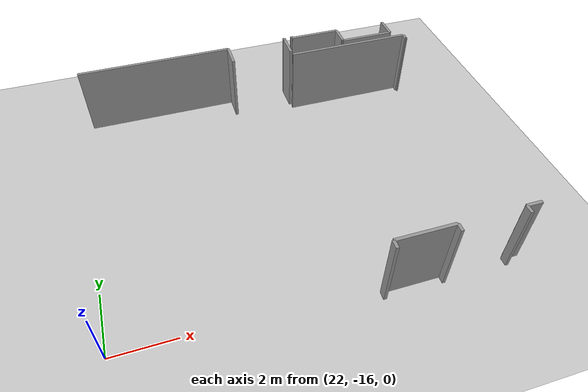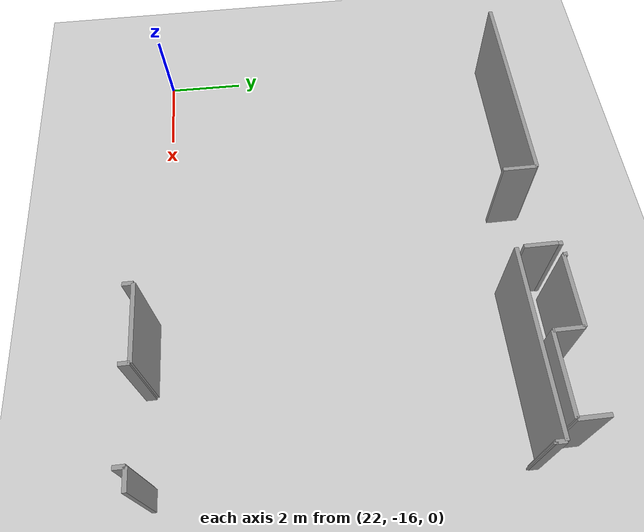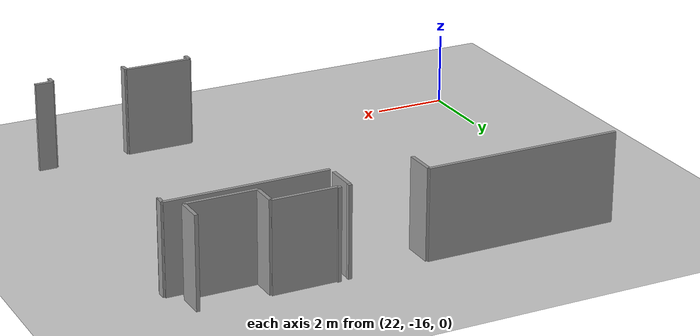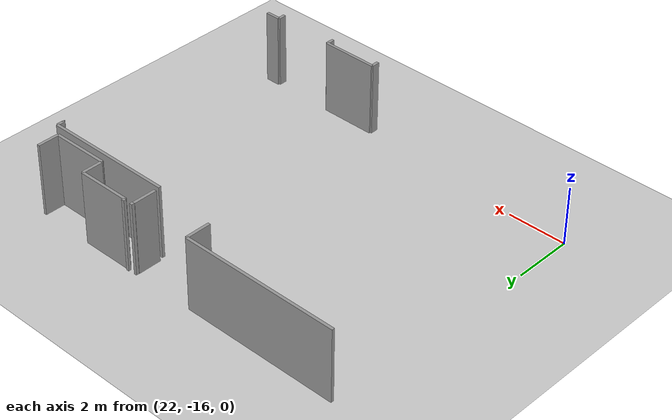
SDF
<sdf version="1.6">
 <world name="default">
  <model name="ground_plane">
   <static>1</static>
   <link name="link">
    <collision name="collision">
     <geometry><plane><normal>0 0 1</normal><size>100 100</size></plane></geometry>
     <surface><friction><ode><mu>100</mu><mu2>50</mu2></ode></friction></surface>
    </collision>
    <visual name="visual">
     <cast_shadows>0</cast_shadows>
     <geometry><plane><normal>0 0 1</normal><size>100 100</size></plane></geometry>
     <material>
      <script><uri>file://media/materials/scripts/gazebo.material</uri><name>Gazebo/Grey</name></script>
     </material>
    </visual>
   </link>
  </model>
  <model name="0510032261_A_40_1_103">
   <static>1</static>
   <link name="Wall_496">
    <collision name="Wall_496_Collision">
     <geometry><box><size>4.41207115629 0.1 2.5</size></box></geometry>
     <pose>2.20603557814 0 1.25 0 0 0</pose>
    </collision>
    <visual name="Wall_496_Visual">
     <pose>2.20603557814 0 1.25 0 0 0</pose>
     <geometry><box><size>4.41207115629 0.1 2.5</size></box></geometry>
     <material>
      <script><uri>file://media/materials/scripts/gazebo.material</uri><name>Gazebo/Grey</name></script>
      <ambient>1 1 1 1</ambient>
     </material>
    </visual>
    <pose>79.0420584498 -24.0836086404 0 0 0 0.0</pose>
   </link>
   <link name="Wall_497">
    <collision name="Wall_497_Collision">
     <geometry><box><size>0.23875476493 0.1 2.5</size></box></geometry>
     <pose>0.119377382465 0 1.25 0 0 0</pose>
    </collision>
    <visual name="Wall_497_Visual">
     <pose>0.119377382465 0 1.25 0 0 0</pose>
     <geometry><box><size>0.23875476493 0.1 2.5</size></box></geometry>
     <material>
      <script><uri>file://media/materials/scripts/gazebo.material</uri><name>Gazebo/Grey</name></script>
      <ambient>1 1 1 1</ambient>
     </material>
    </visual>
    <pose>83.4541296061 -24.0836086404 0 0 0 -1.57079632679</pose>
   </link>
   <link name="Wall_498">
    <collision name="Wall_498_Collision">
     <geometry><box><size>0.0387547649301 0.1 2.5</size></box></geometry>
     <pose>0.0193773824651 0 1.25 0 0 0</pose>
    </collision>
    <visual name="Wall_498_Visual">
     <pose>0.0193773824651 0 1.25 0 0 0</pose>
     <geometry><box><size>0.0387547649301 0.1 2.5</size></box></geometry>
     <material>
      <script><uri>file://media/materials/scripts/gazebo.material</uri><name>Gazebo/Grey</name></script>
      <ambient>1 1 1 1</ambient>
     </material>
    </visual>
    <pose>83.4541296061 -24.3223634053 0 0 0 0.0</pose>
   </link>
   <link name="Wall_503">
    <collision name="Wall_503_Collision">
     <geometry><box><size>0.497458703939 0.1 2.5</size></box></geometry>
     <pose>0.24872935197 0 1.25 0 0 0</pose>
    </collision>
    <visual name="Wall_503_Visual">
     <pose>0.24872935197 0 1.25 0 0 0</pose>
     <geometry><box><size>0.497458703939 0.1 2.5</size></box></geometry>
     <material>
      <script><uri>file://media/materials/scripts/gazebo.material</uri><name>Gazebo/Grey</name></script>
      <ambient>1 1 1 1</ambient>
     </material>
    </visual>
    <pose>83.474841169 -32.8091486658 0 0 0 3.14159265359</pose>
   </link>
   <link name="Wall_504">
    <collision name="Wall_504_Collision">
     <geometry><box><size>0.262770012706 0.1 2.5</size></box></geometry>
     <pose>0.131385006353 0 1.25 0 0 0</pose>
    </collision>
    <visual name="Wall_504_Visual">
     <pose>0.131385006353 0 1.25 0 0 0</pose>
     <geometry><box><size>0.262770012706 0.1 2.5</size></box></geometry>
     <material>
      <script><uri>file://media/materials/scripts/gazebo.material</uri><name>Gazebo/Grey</name></script>
      <ambient>1 1 1 1</ambient>
     </material>
    </visual>
    <pose>82.9773824651 -32.8091486658 0 0 0 -1.57079632679</pose>
   </link>
   <link name="Wall_505">
    <collision name="Wall_505_Collision">
     <geometry><box><size>0.258703939009 0.1 2.5</size></box></geometry>
     <pose>0.129351969504 0 1.25 0 0 0</pose>
    </collision>
    <visual name="Wall_505_Visual">
     <pose>0.129351969504 0 1.25 0 0 0</pose>
     <geometry><box><size>0.258703939009 0.1 2.5</size></box></geometry>
     <material>
      <script><uri>file://media/materials/scripts/gazebo.material</uri><name>Gazebo/Grey</name></script>
      <ambient>1 1 1 1</ambient>
     </material>
    </visual>
    <pose>80.8536213469 -33.0719186785 0 0 0 1.57079632679</pose>
   </link>
   <link name="Wall_506">
    <collision name="Wall_506_Collision">
     <geometry><box><size>1.8750952986 0.1 2.5</size></box></geometry>
     <pose>0.937547649301 0 1.25 0 0 0</pose>
    </collision>
    <visual name="Wall_506_Visual">
     <pose>0.937547649301 0 1.25 0 0 0</pose>
     <geometry><box><size>1.8750952986 0.1 2.5</size></box></geometry>
     <material>
      <script><uri>file://media/materials/scripts/gazebo.material</uri><name>Gazebo/Grey</name></script>
      <ambient>1 1 1 1</ambient>
     </material>
    </visual>
    <pose>80.8536213469 -32.8132147395 0 0 0 3.14159265359</pose>
   </link>
   <link name="Wall_507">
    <collision name="Wall_507_Collision">
     <geometry><box><size>0.260736975858 0.1 2.5</size></box></geometry>
     <pose>0.130368487929 0 1.25 0 0 0</pose>
    </collision>
    <visual name="Wall_507_Visual">
     <pose>0.130368487929 0 1.25 0 0 0</pose>
     <geometry><box><size>0.260736975858 0.1 2.5</size></box></geometry>
     <material>
      <script><uri>file://media/materials/scripts/gazebo.material</uri><name>Gazebo/Grey</name></script>
      <ambient>1 1 1 1</ambient>
     </material>
    </visual>
    <pose>78.9785260483 -32.8132147395 0 0 0 -1.57079632679</pose>
   </link>
   <link name="Wall_517">
    <collision name="Wall_517_Collision">
     <geometry><box><size>0.680559085133 0.1 2.5</size></box></geometry>
     <pose>0.340279542567 0 1.25 0 0 0</pose>
    </collision>
    <visual name="Wall_517_Visual">
     <pose>0.340279542567 0 1.25 0 0 0</pose>
     <geometry><box><size>0.680559085133 0.1 2.5</size></box></geometry>
     <material>
      <script><uri>file://media/materials/scripts/gazebo.material</uri><name>Gazebo/Grey</name></script>
      <ambient>1 1 1 1</ambient>
     </material>
    </visual>
    <pose>81.1246505718 -23.7340533672 0 0 0 1.57079632679</pose>
   </link>
   <link name="Wall_518">
    <collision name="Wall_518_Collision">
     <geometry><box><size>1.78983481576 0.1 2.5</size></box></geometry>
     <pose>0.894917407878 0 1.25 0 0 0</pose>
    </collision>
    <visual name="Wall_518_Visual">
     <pose>0.894917407878 0 1.25 0 0 0</pose>
     <geometry><box><size>1.78983481576 0.1 2.5</size></box></geometry>
     <material>
      <script><uri>file://media/materials/scripts/gazebo.material</uri><name>Gazebo/Grey</name></script>
      <ambient>1 1 1 1</ambient>
     </material>
    </visual>
    <pose>81.1246505718 -23.0534942821 0 0 0 3.14159265359</pose>
   </link>
   <link name="Wall_519">
    <collision name="Wall_519_Collision">
     <geometry><box><size>0.092376111817 0.1 2.5</size></box></geometry>
     <pose>0.0461880559085 0 1.25 0 0 0</pose>
    </collision>
    <visual name="Wall_519_Visual">
     <pose>0.0461880559085 0 1.25 0 0 0</pose>
     <geometry><box><size>0.092376111817 0.1 2.5</size></box></geometry>
     <material>
      <script><uri>file://media/materials/scripts/gazebo.material</uri><name>Gazebo/Grey</name></script>
      <ambient>1 1 1 1</ambient>
     </material>
    </visual>
    <pose>79.334815756 -23.0534942821 0 0 0 1.57079632679</pose>
   </link>
   <link name="Wall_552">
    <collision name="Wall_552_Collision">
     <geometry><box><size>0.743837357052 0.1 2.5</size></box></geometry>
     <pose>0.371918678526 0 1.25 0 0 0</pose>
    </collision>
    <visual name="Wall_552_Visual">
     <pose>0.371918678526 0 1.25 0 0 0</pose>
     <geometry><box><size>0.743837357052 0.1 2.5</size></box></geometry>
     <material>
      <script><uri>file://media/materials/scripts/gazebo.material</uri><name>Gazebo/Grey</name></script>
      <ambient>1 1 1 1</ambient>
     </material>
    </visual>
    <pose>83.049047014 -23.026429479 0 0 0 -1.57079632679</pose>
   </link>
   <link name="Wall_553">
    <collision name="Wall_553_Collision">
     <geometry><box><size>1.92642947903 0.1 2.5</size></box></geometry>
     <pose>0.963214739517 0 1.25 0 0 0</pose>
    </collision>
    <visual name="Wall_553_Visual">
     <pose>0.963214739517 0 1.25 0 0 0</pose>
     <geometry><box><size>1.92642947903 0.1 2.5</size></box></geometry>
     <material>
      <script><uri>file://media/materials/scripts/gazebo.material</uri><name>Gazebo/Grey</name></script>
      <ambient>1 1 1 1</ambient>
     </material>
    </visual>
    <pose>83.049047014 -23.7702668361 0 0 0 3.14159265359</pose>
   </link>
   <link name="Wall_554">
    <collision name="Wall_554_Collision">
     <geometry><box><size>0.0362704916753 0.1 2.5</size></box></geometry>
     <pose>0.0181352458376 0 1.25 0 0 0</pose>
    </collision>
    <visual name="Wall_554_Visual">
     <pose>0.0181352458376 0 1.25 0 0 0</pose>
     <geometry><box><size>0.0362704916753 0.1 2.5</size></box></geometry>
     <material>
      <script><uri>file://media/materials/scripts/gazebo.material</uri><name>Gazebo/Grey</name></script>
      <ambient>1 1 1 1</ambient>
     </material>
    </visual>
    <pose>81.1226175349 -23.7702668361 0 0 0 1.51471484455</pose>
   </link>
   <link name="Wall_576">
    <collision name="Wall_576_Collision">
     <geometry><box><size>0.103557814485 0.1 2.5</size></box></geometry>
     <pose>0.0517789072427 0 1.25 0 0 0</pose>
    </collision>
    <visual name="Wall_576_Visual">
     <pose>0.0517789072427 0 1.25 0 0 0</pose>
     <geometry><box><size>0.103557814485 0.1 2.5</size></box></geometry>
     <material>
      <script><uri>file://media/materials/scripts/gazebo.material</uri><name>Gazebo/Grey</name></script>
      <ambient>1 1 1 1</ambient>
     </material>
    </visual>
    <pose>79.0388818297 -22.9886912325 0 0 0 -1.57079632679</pose>
   </link>
   <link name="Wall_577">
    <collision name="Wall_577_Collision">
     <geometry><box><size>0.010165184244 0.1 2.5</size></box></geometry>
     <pose>0.00508259212198 0 1.25 0 0 0</pose>
    </collision>
    <visual name="Wall_577_Visual">
     <pose>0.00508259212198 0 1.25 0 0 0</pose>
     <geometry><box><size>0.010165184244 0.1 2.5</size></box></geometry>
     <material>
      <script><uri>file://media/materials/scripts/gazebo.material</uri><name>Gazebo/Grey</name></script>
      <ambient>1 1 1 1</ambient>
     </material>
    </visual>
    <pose>79.0388818297 -23.092249047 0 0 0 3.14159265359</pose>
   </link>
   <link name="Wall_578">
    <collision name="Wall_578_Collision">
     <geometry><box><size>0.805463786531 0.1 2.5</size></box></geometry>
     <pose>0.402731893266 0 1.25 0 0 0</pose>
    </collision>
    <visual name="Wall_578_Visual">
     <pose>0.402731893266 0 1.25 0 0 0</pose>
     <geometry><box><size>0.805463786531 0.1 2.5</size></box></geometry>
     <material>
      <script><uri>file://media/materials/scripts/gazebo.material</uri><name>Gazebo/Grey</name></script>
      <ambient>1 1 1 1</ambient>
     </material>
    </visual>
    <pose>79.0287166455 -23.092249047 0 0 0 -1.57079632679</pose>
   </link>
   <link name="Wall_579">
    <collision name="Wall_579_Collision">
     <geometry><box><size>0.843074968234 0.1 2.5</size></box></geometry>
     <pose>0.421537484117 0 1.25 0 0 0</pose>
    </collision>
    <visual name="Wall_579_Visual">
     <pose>0.421537484117 0 1.25 0 0 0</pose>
     <geometry><box><size>0.843074968234 0.1 2.5</size></box></geometry>
     <material>
      <script><uri>file://media/materials/scripts/gazebo.material</uri><name>Gazebo/Grey</name></script>
      <ambient>1 1 1 1</ambient>
     </material>
    </visual>
    <pose>76.8570520966 -23.8977128335 0 0 0 1.57079632679</pose>
   </link>
   <link name="Wall_580">
    <collision name="Wall_580_Collision">
     <geometry><box><size>5.4043202033 0.1 2.5</size></box></geometry>
     <pose>2.70216010165 0 1.25 0 0 0</pose>
    </collision>
    <visual name="Wall_580_Visual">
     <pose>2.70216010165 0 1.25 0 0 0</pose>
     <geometry><box><size>5.4043202033 0.1 2.5</size></box></geometry>
     <material>
      <script><uri>file://media/materials/scripts/gazebo.material</uri><name>Gazebo/Grey</name></script>
      <ambient>1 1 1 1</ambient>
     </material>
    </visual>
    <pose>76.8570520966 -23.0546378653 0 0 0 3.14159265359</pose>
   </link>
   <pose>-49.15 16.5314485388 0 0 0 0</pose>
  </model>
 </world>
</sdf>
